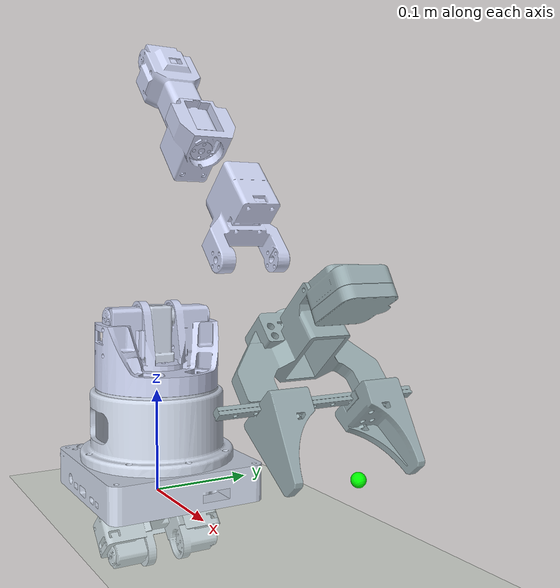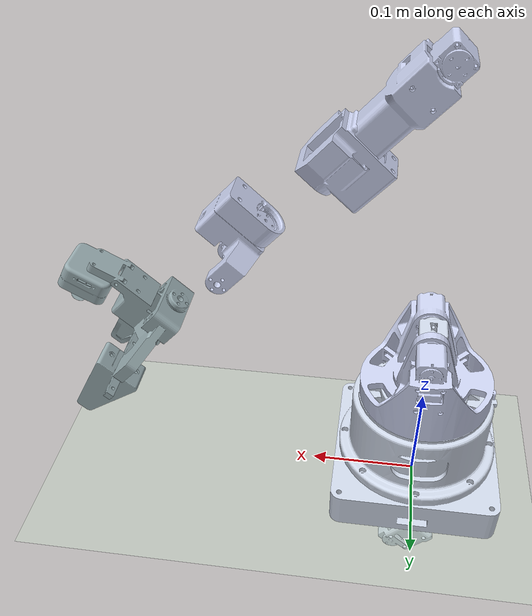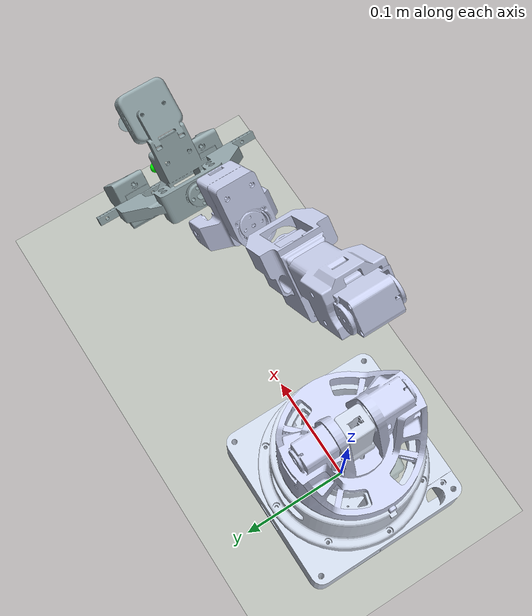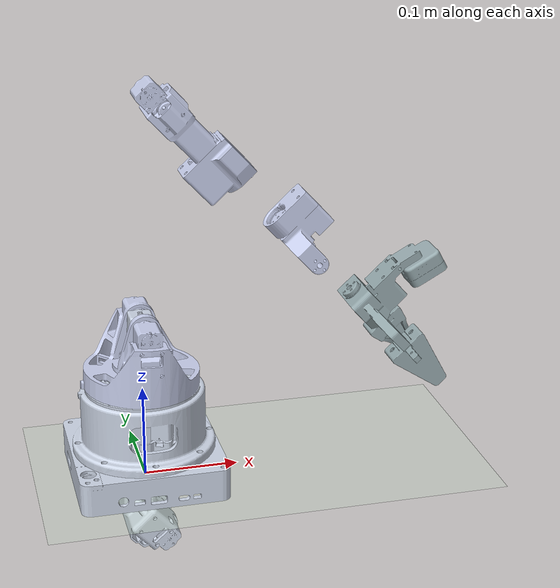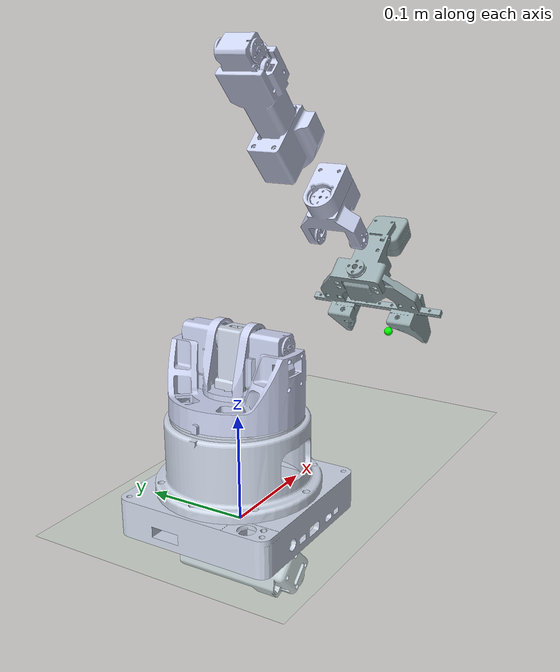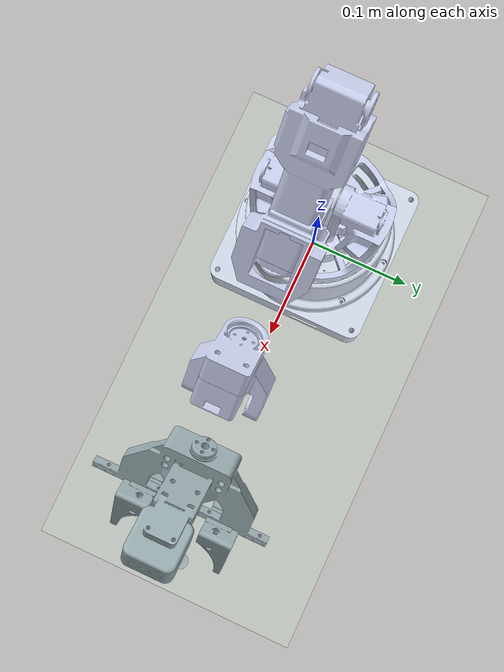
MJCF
<mujoco model="Alicia_D_v5_6_gripper_100mm">
  <compiler angle="radian" meshdir="../../meshes/Alicia_D_v5_6/gripper_100mm/"/>

  <asset>
    <mesh name="base_link" file="base_link.STL"/>
    <mesh name="Link1" file="Link1.STL"/>
    <mesh name="Link2" file="Link2.STL"/>
    <mesh name="Link3" file="Link3.STL"/>
    <mesh name="Link4" file="Link4.STL"/>
    <mesh name="Link5" file="Link5.STL"/>
    <mesh name="Link6" file="Link6.STL"/>
    <mesh name="left_gripper" file="left_gripper.STL"/>
    <mesh name="right_gripper" file="right_gripper.STL"/>
    <texture builtin="gradient" height="100" rgb1=".4 .5 .6" rgb2="0 0 0" type="skybox" width="100" />
    <texture builtin="checker" height="100" name="texplane" rgb1="1 1 1" rgb2=".8 .9 1" type="2d" width="100" />
    <material name="MatPlane" reflectance="0.5" texrepeat="1 1" texture="texplane" texuniform="true" />
    <material name="white" rgba="1 1 1 1" shininess="0.5" specular="0.1" />
    <material name="black" rgba="0.25 0.25 0.25 1" shininess="0.2" specular="0.05" />
    <material name="invisible" rgba="1 1 1 0" shininess="0" specular="0" />
  </asset>
  <worldbody>
    <geom conaffinity="1" condim="3" contype="1" friction="1 .1 .1" group="2" material="MatPlane" name="floor" pos="0 0 0" rgba="0.8 0.9 0.8 1" size="10 10 0.125" type="plane" />
    <light castshadow="false" cutoff="100" diffuse="1 1 1" dir="-0 0 -1.3" directional="true" exponent="1" pos="0 0 1.3" specular=".1 .1 .1" />
    <body name="base_link" pos="0 0 0" quat="0 0 0 -1">
      <geom type="mesh" contype="0" conaffinity="0" group="1" density="0" rgba="0.807843 0.843137 0.905882 1" mesh="base_link"/>
      <geom type="mesh" rgba="0.807843 0.843137 0.905882 1" mesh="base_link"/>
      <body name="Link1" pos="0 0 0.1295" quat="0.999802 0 -0.0198896 0">
        <inertial pos="-0.000109852 -1.29045e-05 0.00303813" quat="0.50432 0.511173 -0.491601 0.492637" mass="0.195233" diaginertia="0.000339803 0.000258352 0.000149295"/>
        <joint name="Joint1" pos="0 0 0" axis="-0.0397714 0 0.999209" range="-2.7925 2.7525" actuatorfrcrange="-5 5"/>
        <geom type="mesh" contype="0" conaffinity="0" group="1" density="0" rgba="0.796078 0.823529 0.937255 1" mesh="Link1"/>
        <geom type="mesh" rgba="0.796078 0.823529 0.937255 1" mesh="Link1"/>
        <body name="Link2" pos="0.001705 0 0.0428361" quat="0.5 0.5 -0.5 0.5">
          <inertial pos="0.150589 0.00100783 0.000567597" quat="0.700686 -0.0988028 -0.0957285 0.700081" mass="0.207034" diaginertia="0.00020571 0.000128608 0.000122248"/>
          <joint name="Joint2" pos="0 0 0" axis="0 0 -1" range="-2 2" actuatorfrcrange="-5 5"/>
          <geom type="mesh" contype="0" conaffinity="0" group="1" density="0" rgba="0.807843 0.843137 0.905882 1" mesh="Link2"/>
          <geom type="mesh" rgba="0.807843 0.843137 0.905882 1" mesh="Link2"/>
          <body name="Link3" pos="0.223671 0.0226916 -5e-05" quat="0.382683 0 0 -0.92388">
            <inertial pos="-0.00248144 -0.0557863 -0.000269721" quat="0.478686 0.505129 -0.544203 0.468559" mass="0.0845576" diaginertia="8.09971e-05 7.62965e-05 2.81294e-05"/>
            <joint name="Joint3" pos="0 0 0" axis="0 0 -1" range="-2.8 0.38" actuatorfrcrange="-5 5"/>
            <geom type="mesh" contype="0" conaffinity="0" group="1" density="0" rgba="0.792157 0.819608 0.933333 1" mesh="Link3"/>
            <geom type="mesh" rgba="0.792157 0.819608 0.933333 1" mesh="Link3"/>
            <body name="Link4" pos="0.00211 -0.099 -0.0002" quat="0.707107 0.707107 0 0">
              <inertial pos="0.000298365 -0.000601369 0.065974" quat="0.99997 0.000404213 0.00701295 -0.00329827" mass="0.0653696" diaginertia="7.0311e-05 6.8747e-05 1.68121e-05"/>
              <joint name="Joint4" pos="0 0 0" axis="0 0 -1" range="-2.7925 2.7925" actuatorfrcrange="-5 5"/>
              <geom type="mesh" contype="0" conaffinity="0" group="1" density="0" rgba="0.792157 0.819608 0.933333 1" mesh="Link4"/>
              <geom type="mesh" rgba="0.792157 0.819608 0.933333 1" mesh="Link4"/>
              <body name="Link5" pos="0 -0.0005 0.12235" quat="0.707107 0.707107 0 0">
                <inertial pos="-0.0113684 0.0308687 -0.00087045" quat="0.799626 0.0142327 0.0147585 0.600148" mass="0.0507639" diaginertia="2.56871e-05 1.81869e-05 1.72553e-05"/>
                <joint name="Joint5" pos="0 0 0" axis="0 0 1" range="-1.5 1.5" actuatorfrcrange="-5 5"/>
                <geom type="mesh" contype="0" conaffinity="0" group="1" density="0" rgba="0.792157 0.819608 0.933333 1" mesh="Link5"/>
                <geom type="mesh" rgba="0.792157 0.819608 0.933333 1" mesh="Link5"/>
                <body name="Link6" pos="-0.00385 0.0575 -0.001" quat="0.707107 -0.707107 0 0">
                  <inertial pos="-0.0287644 -0.000163624 0.0341481" quat="0.383094 0.38309 -0.594171 0.594509" mass="0.123436" diaginertia="8.96258e-05 8.00512e-05 3.41799e-05"/>
                  <joint name="Joint6" pos="0 0 0" axis="0 0 -1" range="-3.14 3.14" actuatorfrcrange="-5 5"/>
                  <geom type="mesh" contype="0" conaffinity="0" group="1" density="0" rgba="0.592157 0.666667 0.682353 1" mesh="Link6"/>
                  <geom type="mesh" rgba="0.592157 0.666667 0.682353 1" mesh="Link6"/>
                  <geom size="0.005" pos="-0.0002 0 0.13048" contype="0" conaffinity="0" group="1" density="0" rgba="0 1 0 1"/>
                  <body name="left_gripper" pos="-0.0002 -0.0504978 0.13098" quat="0.707107 0.707107 0 0">
                    <inertial pos="-2.93287e-08 -0.0434088 0.0106597" quat="0.581113 0.402878 -0.402868 0.581114" mass="0.0256461" diaginertia="8.50964e-06 6.4683e-06 4.66071e-06"/>
                    <joint name="LGripper" pos="0 0 0" axis="0 0 -1" type="slide" range="0 0.05" actuatorfrcrange="-5 5"/>
                    <geom type="mesh" contype="0" conaffinity="0" group="1" density="0" rgba="0.592157 0.666667 0.682353 1" mesh="left_gripper"/>
                    <geom type="mesh" rgba="0.592157 0.666667 0.682353 1" mesh="left_gripper"/>
                  </body>
                  <body name="right_gripper" pos="-0.0002 0.050502 0.13098" quat="0.707105 -0.707108 0 0">
                    <inertial pos="3.00579e-08 0.0434088 0.0106597" quat="0.402868 0.581114 -0.581113 0.402878" mass="0.0256461" diaginertia="8.50965e-06 6.4683e-06 4.66071e-06"/>
                    <joint name="RGripper" pos="0 0 0" axis="0 0 1" type="slide" range="-0.05 0" actuatorfrcrange="-5 5"/>
                    <geom type="mesh" contype="0" conaffinity="0" group="1" density="0" rgba="0.592157 0.666667 0.682353 1" mesh="right_gripper"/>
                    <geom type="mesh" rgba="0.592157 0.666667 0.682353 1" mesh="right_gripper"/>
                  </body>
                </body>
              </body>
            </body>
          </body>
        </body>
      </body>
    </body>
  </worldbody>

  <contact>
    <exclude body1="base_link" body2="Link1" />
    <exclude body1="Link1" body2="Link2" />
    <exclude body1="Link2" body2="Link3" />
    <exclude body1="Link3" body2="Link4" />
    <exclude body1="Link4" body2="Link5" />
    <exclude body1="Link5" body2="Link6" />
    <exclude body1="Link6" body2="left_gripper" />
    <exclude body1="left_gripper" body2="right_gripper" />
  </contact>

  <actuator>
    <position name="Joint1" joint="Joint1" kp="100" kv="10" ctrlrange="-2.16 2.16" />
    <position name="Joint2" joint="Joint2" kp="100" kv="10" ctrlrange="-1.57 1.57" />
    <position name="Joint3" joint="Joint3" kp="100" kv="10" ctrlrange="-0.5 2.35619" />
    <position name="Joint4" joint="Joint4" kp="100" kv="10" ctrlrange="-2.7925 2.7925" />
    <position name="Joint5" joint="Joint5" kp="100" kv="10" ctrlrange="-1.57 1.57" />
    <position name="Joint6" joint="Joint6" kp="100" kv="10" ctrlrange="-3.14 3.14" />
    <position name="LGripper" joint="LGripper" kp="100" kv="10" ctrlrange="-0.05 0" />
    <position name="RGripper" joint="RGripper" kp="100" kv="10" ctrlrange="0 0.05" />
  </actuator>

</mujoco>
